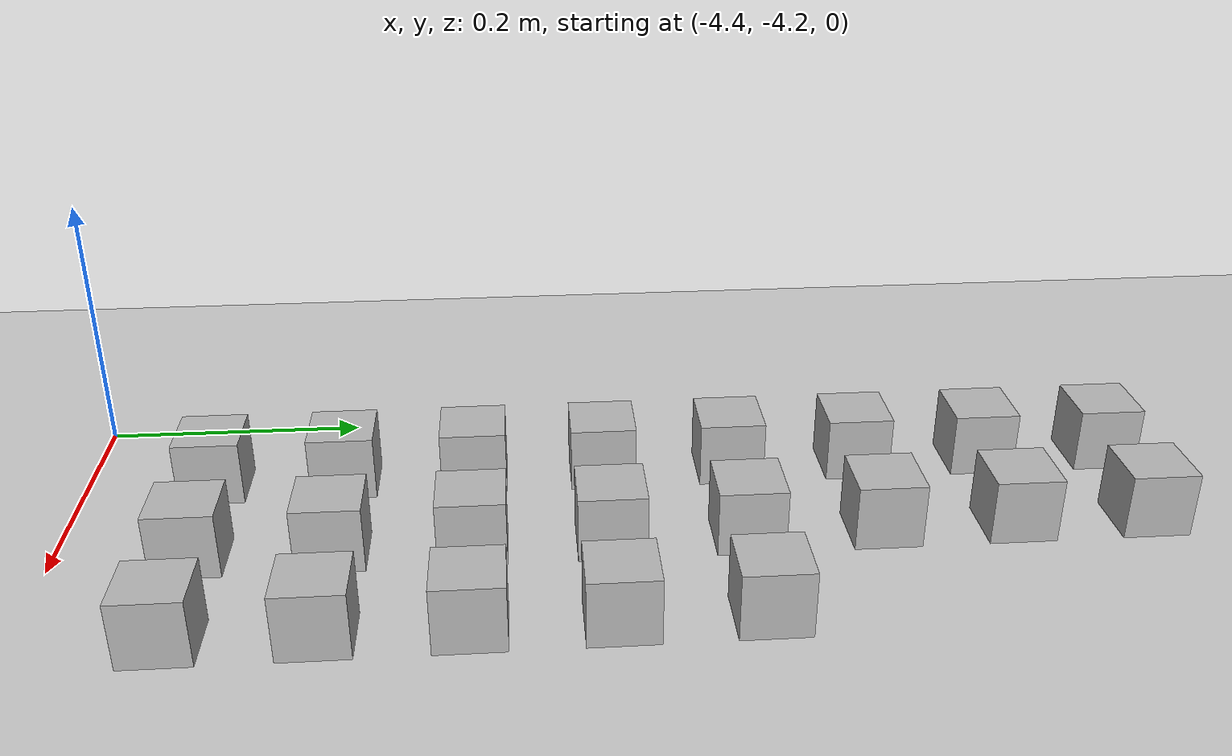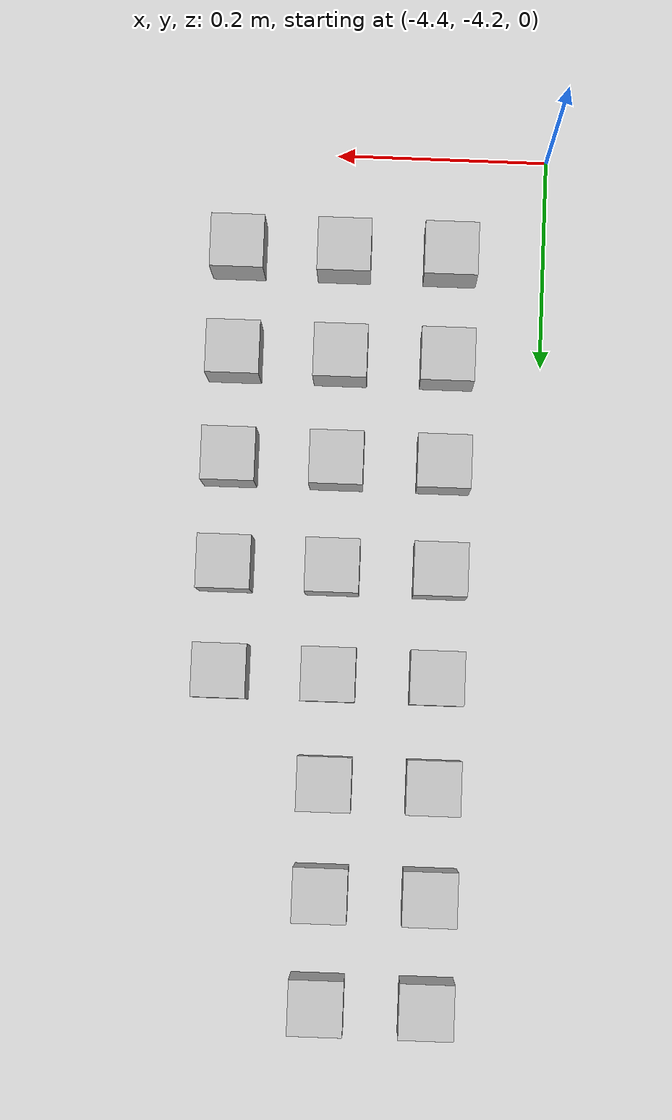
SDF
<sdf version="1.4">
 <world name="default">
  <model name="ground_plane">
   <static>1</static>
   <link name="link">
    <collision name="collision">
     <geometry><plane><normal>0 0 1</normal><size>100 100</size></plane></geometry>
     <surface><friction><ode><mu>100</mu><mu2>50</mu2></ode></friction></surface>
    </collision>
    <visual name="visual">
     <cast_shadows>0</cast_shadows>
     <geometry><plane><normal>0 0 1</normal><size>100 100</size></plane></geometry>
     <material>
      <script><uri>file://media/materials/scripts/gazebo.material</uri><name>Gazebo/Grey</name></script>
     </material>
    </visual>
    <velocity_decay><linear>0</linear><angular>0</angular></velocity_decay>
   </link>
  </model>
  <model name="at64">
   <static>0</static>
   <link name="link">
    <inertial>
     <mass>0.01</mass>
     <inertia><ixx>4e-05</ixx><ixy>0</ixy><ixz>0</ixz><iyy>4e-05</iyy><iyz>0</iyz><izz>4e-05</izz></inertia>
    </inertial>
    <visual name="visual">
     <geometry><box><size>0.05 0.05 0.05</size></box></geometry>
     <material>
      <script>
       <uri>model://at0/materials/scripts</uri>
       <uri>model://at0/materials/textures</uri>
       <name>at0/Diffuse</name>
      </script>
     </material>
    </visual>
    <collision name="collision">
     <geometry><box><size>0.05 0.05 0.05</size></box></geometry>
     <surface><friction><ode><mu>0.8</mu><mu2>0.7</mu2></ode></friction></surface>
    </collision>
    <velocity_decay><linear>0</linear><angular>0</angular></velocity_decay>
   </link>
   <pose>-4.31043 -4.10066 0.025 0 -0 0</pose>
  </model>
  <model name="at65">
   <static>0</static>
   <link name="link">
    <inertial>
     <mass>0.01</mass>
     <inertia><ixx>4e-05</ixx><ixy>0</ixy><ixz>0</ixz><iyy>4e-05</iyy><iyz>0</iyz><izz>4e-05</izz></inertia>
    </inertial>
    <visual name="visual">
     <geometry><box><size>0.05 0.05 0.05</size></box></geometry>
     <material>
      <script>
       <uri>model://at0/materials/scripts</uri>
       <uri>model://at0/materials/textures</uri>
       <name>at0/Diffuse</name>
      </script>
     </material>
    </visual>
    <collision name="collision">
     <geometry><box><size>0.05 0.05 0.05</size></box></geometry>
     <surface><friction><ode><mu>0.8</mu><mu2>0.7</mu2></ode></friction></surface>
    </collision>
    <velocity_decay><linear>0</linear><angular>0</angular></velocity_decay>
   </link>
   <pose>-4.21043 -4.10066 0.025 0 -0 0</pose>
  </model>
  <model name="at66">
   <static>0</static>
   <link name="link">
    <inertial>
     <mass>0.01</mass>
     <inertia><ixx>4e-05</ixx><ixy>0</ixy><ixz>0</ixz><iyy>4e-05</iyy><iyz>0</iyz><izz>4e-05</izz></inertia>
    </inertial>
    <visual name="visual">
     <geometry><box><size>0.05 0.05 0.05</size></box></geometry>
     <material>
      <script>
       <uri>model://at0/materials/scripts</uri>
       <uri>model://at0/materials/textures</uri>
       <name>at0/Diffuse</name>
      </script>
     </material>
    </visual>
    <collision name="collision">
     <geometry><box><size>0.05 0.05 0.05</size></box></geometry>
     <surface><friction><ode><mu>0.8</mu><mu2>0.7</mu2></ode></friction></surface>
    </collision>
    <velocity_decay><linear>0</linear><angular>0</angular></velocity_decay>
   </link>
   <pose>-4.11043 -4.10066 0.025 0 -0 0</pose>
  </model>
  <model name="at68">
   <static>0</static>
   <link name="link">
    <inertial>
     <mass>0.01</mass>
     <inertia><ixx>4e-05</ixx><ixy>0</ixy><ixz>0</ixz><iyy>4e-05</iyy><iyz>0</iyz><izz>4e-05</izz></inertia>
    </inertial>
    <visual name="visual">
     <geometry><box><size>0.05 0.05 0.05</size></box></geometry>
     <material>
      <script>
       <uri>model://at0/materials/scripts</uri>
       <uri>model://at0/materials/textures</uri>
       <name>at0/Diffuse</name>
      </script>
     </material>
    </visual>
    <collision name="collision">
     <geometry><box><size>0.05 0.05 0.05</size></box></geometry>
     <surface><friction><ode><mu>0.8</mu><mu2>0.7</mu2></ode></friction></surface>
    </collision>
    <velocity_decay><linear>0</linear><angular>0</angular></velocity_decay>
   </link>
   <pose>-4.31043 -4.00066 0.025 0 -0 0</pose>
  </model>
  <model name="at69">
   <static>0</static>
   <link name="link">
    <inertial>
     <mass>0.01</mass>
     <inertia><ixx>4e-05</ixx><ixy>0</ixy><ixz>0</ixz><iyy>4e-05</iyy><iyz>0</iyz><izz>4e-05</izz></inertia>
    </inertial>
    <visual name="visual">
     <geometry><box><size>0.05 0.05 0.05</size></box></geometry>
     <material>
      <script>
       <uri>model://at0/materials/scripts</uri>
       <uri>model://at0/materials/textures</uri>
       <name>at0/Diffuse</name>
      </script>
     </material>
    </visual>
    <collision name="collision">
     <geometry><box><size>0.05 0.05 0.05</size></box></geometry>
     <surface><friction><ode><mu>0.8</mu><mu2>0.7</mu2></ode></friction></surface>
    </collision>
    <velocity_decay><linear>0</linear><angular>0</angular></velocity_decay>
   </link>
   <pose>-4.21043 -4.00066 0.025 0 -0 0</pose>
  </model>
  <model name="at70">
   <static>0</static>
   <link name="link">
    <inertial>
     <mass>0.01</mass>
     <inertia><ixx>4e-05</ixx><ixy>0</ixy><ixz>0</ixz><iyy>4e-05</iyy><iyz>0</iyz><izz>4e-05</izz></inertia>
    </inertial>
    <visual name="visual">
     <geometry><box><size>0.05 0.05 0.05</size></box></geometry>
     <material>
      <script>
       <uri>model://at0/materials/scripts</uri>
       <uri>model://at0/materials/textures</uri>
       <name>at0/Diffuse</name>
      </script>
     </material>
    </visual>
    <collision name="collision">
     <geometry><box><size>0.05 0.05 0.05</size></box></geometry>
     <surface><friction><ode><mu>0.8</mu><mu2>0.7</mu2></ode></friction></surface>
    </collision>
    <velocity_decay><linear>0</linear><angular>0</angular></velocity_decay>
   </link>
   <pose>-4.11043 -4.00066 0.025 0 -0 0</pose>
  </model>
  <model name="at72">
   <static>0</static>
   <link name="link">
    <inertial>
     <mass>0.01</mass>
     <inertia><ixx>4e-05</ixx><ixy>0</ixy><ixz>0</ixz><iyy>4e-05</iyy><iyz>0</iyz><izz>4e-05</izz></inertia>
    </inertial>
    <visual name="visual">
     <geometry><box><size>0.05 0.05 0.05</size></box></geometry>
     <material>
      <script>
       <uri>model://at0/materials/scripts</uri>
       <uri>model://at0/materials/textures</uri>
       <name>at0/Diffuse</name>
      </script>
     </material>
    </visual>
    <collision name="collision">
     <geometry><box><size>0.05 0.05 0.05</size></box></geometry>
     <surface><friction><ode><mu>0.8</mu><mu2>0.7</mu2></ode></friction></surface>
    </collision>
    <velocity_decay><linear>0</linear><angular>0</angular></velocity_decay>
   </link>
   <pose>-4.31043 -3.90066 0.025 0 -0 0</pose>
  </model>
  <model name="at73">
   <static>0</static>
   <link name="link">
    <inertial>
     <mass>0.01</mass>
     <inertia><ixx>4e-05</ixx><ixy>0</ixy><ixz>0</ixz><iyy>4e-05</iyy><iyz>0</iyz><izz>4e-05</izz></inertia>
    </inertial>
    <visual name="visual">
     <geometry><box><size>0.05 0.05 0.05</size></box></geometry>
     <material>
      <script>
       <uri>model://at0/materials/scripts</uri>
       <uri>model://at0/materials/textures</uri>
       <name>at0/Diffuse</name>
      </script>
     </material>
    </visual>
    <collision name="collision">
     <geometry><box><size>0.05 0.05 0.05</size></box></geometry>
     <surface><friction><ode><mu>0.8</mu><mu2>0.7</mu2></ode></friction></surface>
    </collision>
    <velocity_decay><linear>0</linear><angular>0</angular></velocity_decay>
   </link>
   <pose>-4.21043 -3.90066 0.025 0 -0 0</pose>
  </model>
  <model name="at74">
   <static>0</static>
   <link name="link">
    <inertial>
     <mass>0.01</mass>
     <inertia><ixx>4e-05</ixx><ixy>0</ixy><ixz>0</ixz><iyy>4e-05</iyy><iyz>0</iyz><izz>4e-05</izz></inertia>
    </inertial>
    <visual name="visual">
     <geometry><box><size>0.05 0.05 0.05</size></box></geometry>
     <material>
      <script>
       <uri>model://at0/materials/scripts</uri>
       <uri>model://at0/materials/textures</uri>
       <name>at0/Diffuse</name>
      </script>
     </material>
    </visual>
    <collision name="collision">
     <geometry><box><size>0.05 0.05 0.05</size></box></geometry>
     <surface><friction><ode><mu>0.8</mu><mu2>0.7</mu2></ode></friction></surface>
    </collision>
    <velocity_decay><linear>0</linear><angular>0</angular></velocity_decay>
   </link>
   <pose>-4.11043 -3.90066 0.025 0 -0 0</pose>
  </model>
  <model name="at76">
   <static>0</static>
   <link name="link">
    <inertial>
     <mass>0.01</mass>
     <inertia><ixx>4e-05</ixx><ixy>0</ixy><ixz>0</ixz><iyy>4e-05</iyy><iyz>0</iyz><izz>4e-05</izz></inertia>
    </inertial>
    <visual name="visual">
     <geometry><box><size>0.05 0.05 0.05</size></box></geometry>
     <material>
      <script>
       <uri>model://at0/materials/scripts</uri>
       <uri>model://at0/materials/textures</uri>
       <name>at0/Diffuse</name>
      </script>
     </material>
    </visual>
    <collision name="collision">
     <geometry><box><size>0.05 0.05 0.05</size></box></geometry>
     <surface><friction><ode><mu>0.8</mu><mu2>0.7</mu2></ode></friction></surface>
    </collision>
    <velocity_decay><linear>0</linear><angular>0</angular></velocity_decay>
   </link>
   <pose>-4.31043 -3.80066 0.025 0 -0 0</pose>
  </model>
  <model name="at77">
   <static>0</static>
   <link name="link">
    <inertial>
     <mass>0.01</mass>
     <inertia><ixx>4e-05</ixx><ixy>0</ixy><ixz>0</ixz><iyy>4e-05</iyy><iyz>0</iyz><izz>4e-05</izz></inertia>
    </inertial>
    <visual name="visual">
     <geometry><box><size>0.05 0.05 0.05</size></box></geometry>
     <material>
      <script>
       <uri>model://at0/materials/scripts</uri>
       <uri>model://at0/materials/textures</uri>
       <name>at0/Diffuse</name>
      </script>
     </material>
    </visual>
    <collision name="collision">
     <geometry><box><size>0.05 0.05 0.05</size></box></geometry>
     <surface><friction><ode><mu>0.8</mu><mu2>0.7</mu2></ode></friction></surface>
    </collision>
    <velocity_decay><linear>0</linear><angular>0</angular></velocity_decay>
   </link>
   <pose>-4.21043 -3.80066 0.025 0 -0 0</pose>
  </model>
  <model name="at78">
   <static>0</static>
   <link name="link">
    <inertial>
     <mass>0.01</mass>
     <inertia><ixx>4e-05</ixx><ixy>0</ixy><ixz>0</ixz><iyy>4e-05</iyy><iyz>0</iyz><izz>4e-05</izz></inertia>
    </inertial>
    <visual name="visual">
     <geometry><box><size>0.05 0.05 0.05</size></box></geometry>
     <material>
      <script>
       <uri>model://at0/materials/scripts</uri>
       <uri>model://at0/materials/textures</uri>
       <name>at0/Diffuse</name>
      </script>
     </material>
    </visual>
    <collision name="collision">
     <geometry><box><size>0.05 0.05 0.05</size></box></geometry>
     <surface><friction><ode><mu>0.8</mu><mu2>0.7</mu2></ode></friction></surface>
    </collision>
    <velocity_decay><linear>0</linear><angular>0</angular></velocity_decay>
   </link>
   <pose>-4.11043 -3.80066 0.025 0 -0 0</pose>
  </model>
  <model name="at80">
   <static>0</static>
   <link name="link">
    <inertial>
     <mass>0.01</mass>
     <inertia><ixx>4e-05</ixx><ixy>0</ixy><ixz>0</ixz><iyy>4e-05</iyy><iyz>0</iyz><izz>4e-05</izz></inertia>
    </inertial>
    <visual name="visual">
     <geometry><box><size>0.05 0.05 0.05</size></box></geometry>
     <material>
      <script>
       <uri>model://at0/materials/scripts</uri>
       <uri>model://at0/materials/textures</uri>
       <name>at0/Diffuse</name>
      </script>
     </material>
    </visual>
    <collision name="collision">
     <geometry><box><size>0.05 0.05 0.05</size></box></geometry>
     <surface><friction><ode><mu>0.8</mu><mu2>0.7</mu2></ode></friction></surface>
    </collision>
    <velocity_decay><linear>0</linear><angular>0</angular></velocity_decay>
   </link>
   <pose>-4.31043 -3.70066 0.025 0 -0 0</pose>
  </model>
  <model name="at81">
   <static>0</static>
   <link name="link">
    <inertial>
     <mass>0.01</mass>
     <inertia><ixx>4e-05</ixx><ixy>0</ixy><ixz>0</ixz><iyy>4e-05</iyy><iyz>0</iyz><izz>4e-05</izz></inertia>
    </inertial>
    <visual name="visual">
     <geometry><box><size>0.05 0.05 0.05</size></box></geometry>
     <material>
      <script>
       <uri>model://at0/materials/scripts</uri>
       <uri>model://at0/materials/textures</uri>
       <name>at0/Diffuse</name>
      </script>
     </material>
    </visual>
    <collision name="collision">
     <geometry><box><size>0.05 0.05 0.05</size></box></geometry>
     <surface><friction><ode><mu>0.8</mu><mu2>0.7</mu2></ode></friction></surface>
    </collision>
    <velocity_decay><linear>0</linear><angular>0</angular></velocity_decay>
   </link>
   <pose>-4.21043 -3.70066 0.025 0 -0 0</pose>
  </model>
  <model name="at82">
   <static>0</static>
   <link name="link">
    <inertial>
     <mass>0.01</mass>
     <inertia><ixx>4e-05</ixx><ixy>0</ixy><ixz>0</ixz><iyy>4e-05</iyy><iyz>0</iyz><izz>4e-05</izz></inertia>
    </inertial>
    <visual name="visual">
     <geometry><box><size>0.05 0.05 0.05</size></box></geometry>
     <material>
      <script>
       <uri>model://at0/materials/scripts</uri>
       <uri>model://at0/materials/textures</uri>
       <name>at0/Diffuse</name>
      </script>
     </material>
    </visual>
    <collision name="collision">
     <geometry><box><size>0.05 0.05 0.05</size></box></geometry>
     <surface><friction><ode><mu>0.8</mu><mu2>0.7</mu2></ode></friction></surface>
    </collision>
    <velocity_decay><linear>0</linear><angular>0</angular></velocity_decay>
   </link>
   <pose>-4.11043 -3.70066 0.025 0 -0 0</pose>
  </model>
  <model name="at84">
   <static>0</static>
   <link name="link">
    <inertial>
     <mass>0.01</mass>
     <inertia><ixx>4e-05</ixx><ixy>0</ixy><ixz>0</ixz><iyy>4e-05</iyy><iyz>0</iyz><izz>4e-05</izz></inertia>
    </inertial>
    <visual name="visual">
     <geometry><box><size>0.05 0.05 0.05</size></box></geometry>
     <material>
      <script>
       <uri>model://at0/materials/scripts</uri>
       <uri>model://at0/materials/textures</uri>
       <name>at0/Diffuse</name>
      </script>
     </material>
    </visual>
    <collision name="collision">
     <geometry><box><size>0.05 0.05 0.05</size></box></geometry>
     <surface><friction><ode><mu>0.8</mu><mu2>0.7</mu2></ode></friction></surface>
    </collision>
    <velocity_decay><linear>0</linear><angular>0</angular></velocity_decay>
   </link>
   <pose>-4.31043 -3.60066 0.025 0 -0 0</pose>
  </model>
  <model name="at85">
   <static>0</static>
   <link name="link">
    <inertial>
     <mass>0.01</mass>
     <inertia><ixx>4e-05</ixx><ixy>0</ixy><ixz>0</ixz><iyy>4e-05</iyy><iyz>0</iyz><izz>4e-05</izz></inertia>
    </inertial>
    <visual name="visual">
     <geometry><box><size>0.05 0.05 0.05</size></box></geometry>
     <material>
      <script>
       <uri>model://at0/materials/scripts</uri>
       <uri>model://at0/materials/textures</uri>
       <name>at0/Diffuse</name>
      </script>
     </material>
    </visual>
    <collision name="collision">
     <geometry><box><size>0.05 0.05 0.05</size></box></geometry>
     <surface><friction><ode><mu>0.8</mu><mu2>0.7</mu2></ode></friction></surface>
    </collision>
    <velocity_decay><linear>0</linear><angular>0</angular></velocity_decay>
   </link>
   <pose>-4.21043 -3.60066 0.025 0 -0 0</pose>
  </model>
  <model name="at88">
   <static>0</static>
   <link name="link">
    <inertial>
     <mass>0.01</mass>
     <inertia><ixx>4e-05</ixx><ixy>0</ixy><ixz>0</ixz><iyy>4e-05</iyy><iyz>0</iyz><izz>4e-05</izz></inertia>
    </inertial>
    <visual name="visual">
     <geometry><box><size>0.05 0.05 0.05</size></box></geometry>
     <material>
      <script>
       <uri>model://at0/materials/scripts</uri>
       <uri>model://at0/materials/textures</uri>
       <name>at0/Diffuse</name>
      </script>
     </material>
    </visual>
    <collision name="collision">
     <geometry><box><size>0.05 0.05 0.05</size></box></geometry>
     <surface><friction><ode><mu>0.8</mu><mu2>0.7</mu2></ode></friction></surface>
    </collision>
    <velocity_decay><linear>0</linear><angular>0</angular></velocity_decay>
   </link>
   <pose>-4.31043 -3.50066 0.025 0 -0 0</pose>
  </model>
  <model name="at89">
   <static>0</static>
   <link name="link">
    <inertial>
     <mass>0.01</mass>
     <inertia><ixx>4e-05</ixx><ixy>0</ixy><ixz>0</ixz><iyy>4e-05</iyy><iyz>0</iyz><izz>4e-05</izz></inertia>
    </inertial>
    <visual name="visual">
     <geometry><box><size>0.05 0.05 0.05</size></box></geometry>
     <material>
      <script>
       <uri>model://at0/materials/scripts</uri>
       <uri>model://at0/materials/textures</uri>
       <name>at0/Diffuse</name>
      </script>
     </material>
    </visual>
    <collision name="collision">
     <geometry><box><size>0.05 0.05 0.05</size></box></geometry>
     <surface><friction><ode><mu>0.8</mu><mu2>0.7</mu2></ode></friction></surface>
    </collision>
    <velocity_decay><linear>0</linear><angular>0</angular></velocity_decay>
   </link>
   <pose>-4.21043 -3.50066 0.025 0 -0 0</pose>
  </model>
  <model name="at92">
   <static>0</static>
   <link name="link">
    <inertial>
     <mass>0.01</mass>
     <inertia><ixx>4e-05</ixx><ixy>0</ixy><ixz>0</ixz><iyy>4e-05</iyy><iyz>0</iyz><izz>4e-05</izz></inertia>
    </inertial>
    <visual name="visual">
     <geometry><box><size>0.05 0.05 0.05</size></box></geometry>
     <material>
      <script>
       <uri>model://at0/materials/scripts</uri>
       <uri>model://at0/materials/textures</uri>
       <name>at0/Diffuse</name>
      </script>
     </material>
    </visual>
    <collision name="collision">
     <geometry><box><size>0.05 0.05 0.05</size></box></geometry>
     <surface><friction><ode><mu>0.8</mu><mu2>0.7</mu2></ode></friction></surface>
    </collision>
    <velocity_decay><linear>0</linear><angular>0</angular></velocity_decay>
   </link>
   <pose>-4.31043 -3.40066 0.025 0 -0 0</pose>
  </model>
  <model name="at93">
   <static>0</static>
   <link name="link">
    <inertial>
     <mass>0.01</mass>
     <inertia><ixx>4e-05</ixx><ixy>0</ixy><ixz>0</ixz><iyy>4e-05</iyy><iyz>0</iyz><izz>4e-05</izz></inertia>
    </inertial>
    <visual name="visual">
     <geometry><box><size>0.05 0.05 0.05</size></box></geometry>
     <material>
      <script>
       <uri>model://at0/materials/scripts</uri>
       <uri>model://at0/materials/textures</uri>
       <name>at0/Diffuse</name>
      </script>
     </material>
    </visual>
    <collision name="collision">
     <geometry><box><size>0.05 0.05 0.05</size></box></geometry>
     <surface><friction><ode><mu>0.8</mu><mu2>0.7</mu2></ode></friction></surface>
    </collision>
    <velocity_decay><linear>0</linear><angular>0</angular></velocity_decay>
   </link>
   <pose>-4.21043 -3.40066 0.025 0 -0 0</pose>
  </model>
 </world>
</sdf>
